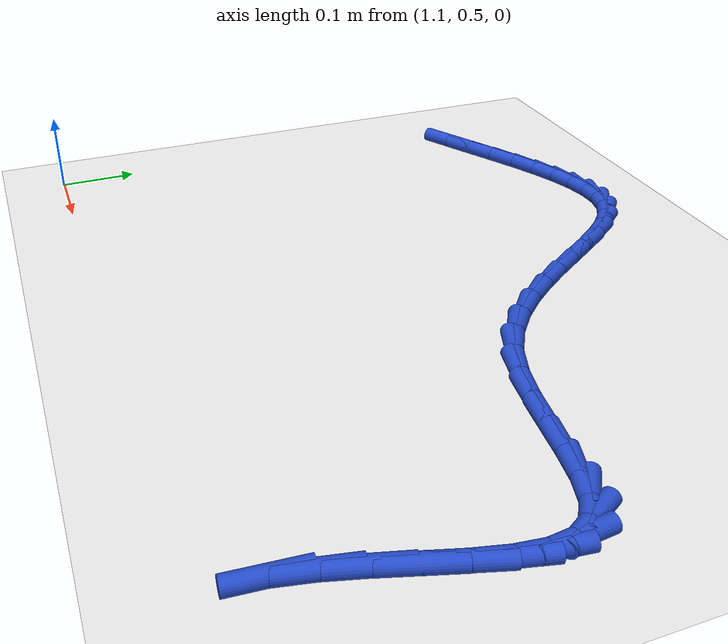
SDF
<sdf version="1.6">
 <world name="default">
  <model name="ground_plane">
   <static>1</static>
   <link name="link">
    <collision name="collision">
     <geometry><plane><normal>0 0 1</normal><size>100 100</size></plane></geometry>
     <surface><friction><ode><mu>100</mu><mu2>50</mu2></ode></friction></surface>
    </collision>
    <visual name="visual">
     <cast_shadows>0</cast_shadows>
     <geometry><plane><normal>0 0 1</normal><size>100 100</size></plane></geometry>
     <material>
      <script><uri>file://media/materials/scripts/gazebo.material</uri><name>Gazebo/WhiteGlow</name></script>
     </material>
    </visual>
   </link>
  </model>
  <model name="line">
   <link name="link_51">
    <pose>1.1722780685737235 1.085295206847069 0.01 0 1.57 0.5056104026165193</pose>
    <collision name="collision">
     <geometry><cylinder><radius>0.01</radius><length>0.08</length></cylinder></geometry>
    </collision>
    <visual name="visual">
     <material>
      <script><name>Gazebo/Blue</name><uri>file://media/materials/scripts/gazebo.material</uri></script>
     </material>
     <geometry><cylinder><radius>0.01</radius><length>0.08</length></cylinder></geometry>
    </visual>
   </link>
   <link name="link_52">
    <pose>1.2079576424929257 1.1050477675687997 0.01 0 1.57 0.5108276466548389</pose>
    <collision name="collision">
     <geometry><cylinder><radius>0.01</radius><length>0.08</length></cylinder></geometry>
    </collision>
    <visual name="visual">
     <material>
      <script><name>Gazebo/Blue</name><uri>file://media/materials/scripts/gazebo.material</uri></script>
     </material>
     <geometry><cylinder><radius>0.01</radius><length>0.08</length></cylinder></geometry>
    </visual>
   </link>
   <link name="link_53">
    <pose>1.2428964680187569 1.124629086350168 0.01 0 1.57 0.4988321112099095</pose>
    <collision name="collision">
     <geometry><cylinder><radius>0.01</radius><length>0.08</length></cylinder></geometry>
    </collision>
    <visual name="visual">
     <material>
      <script><name>Gazebo/Blue</name><uri>file://media/materials/scripts/gazebo.material</uri></script>
     </material>
     <geometry><cylinder><radius>0.01</radius><length>0.08</length></cylinder></geometry>
    </visual>
   </link>
   <link name="link_54">
    <pose>1.2769213514031528 1.1431654010066314 0.01 0 1.57 0.46725213005288696</pose>
    <collision name="collision">
     <geometry><cylinder><radius>0.01</radius><length>0.08</length></cylinder></geometry>
    </collision>
    <visual name="visual">
     <material>
      <script><name>Gazebo/Blue</name><uri>file://media/materials/scripts/gazebo.material</uri></script>
     </material>
     <geometry><cylinder><radius>0.01</radius><length>0.08</length></cylinder></geometry>
    </visual>
   </link>
   <link name="link_55">
    <pose>1.3098590988980492 1.1597829493536476 0.01 0 1.57 0.4115131672385158</pose>
    <collision name="collision">
     <geometry><cylinder><radius>0.01</radius><length>0.08</length></cylinder></geometry>
    </collision>
    <visual name="visual">
     <material>
      <script><name>Gazebo/Blue</name><uri>file://media/materials/scripts/gazebo.material</uri></script>
     </material>
     <geometry><cylinder><radius>0.01</radius><length>0.08</length></cylinder></geometry>
    </visual>
   </link>
   <link name="link_56">
    <pose>1.3415365167553832 1.1736079692066748 0.01 0 1.57 0.32405297972470215</pose>
    <collision name="collision">
     <geometry><cylinder><radius>0.01</radius><length>0.08</length></cylinder></geometry>
    </collision>
    <visual name="visual">
     <material>
      <script><name>Gazebo/Blue</name><uri>file://media/materials/scripts/gazebo.material</uri></script>
     </material>
     <geometry><cylinder><radius>0.01</radius><length>0.08</length></cylinder></geometry>
    </visual>
   </link>
   <link name="link_57">
    <pose>1.3717804112270906 1.1837666983811703 0.01 0 1.57 0.19374114664384048</pose>
    <collision name="collision">
     <geometry><cylinder><radius>0.01</radius><length>0.08</length></cylinder></geometry>
    </collision>
    <visual name="visual">
     <material>
      <script><name>Gazebo/Blue</name><uri>file://media/materials/scripts/gazebo.material</uri></script>
     </material>
     <geometry><cylinder><radius>0.01</radius><length>0.08</length></cylinder></geometry>
    </visual>
   </link>
   <link name="link_58">
    <pose>1.400417588565107 1.1893853746925929 0.01 0 1.57 0.007627629979824843</pose>
    <collision name="collision">
     <geometry><cylinder><radius>0.01</radius><length>0.08</length></cylinder></geometry>
    </collision>
    <visual name="visual">
     <material>
      <script><name>Gazebo/Blue</name><uri>file://media/materials/scripts/gazebo.material</uri></script>
     </material>
     <geometry><cylinder><radius>0.01</radius><length>0.08</length></cylinder></geometry>
    </visual>
   </link>
   <link name="link_59">
    <pose>1.4272748550213692 1.1895902359563995 0.01 0 1.57 -0.2395548619460163</pose>
    <collision name="collision">
     <geometry><cylinder><radius>0.01</radius><length>0.08</length></cylinder></geometry>
    </collision>
    <visual name="visual">
     <material>
      <script><name>Gazebo/Blue</name><uri>file://media/materials/scripts/gazebo.material</uri></script>
     </material>
     <geometry><cylinder><radius>0.01</radius><length>0.08</length></cylinder></geometry>
    </visual>
   </link>
   <link name="link_60">
    <pose>1.452179016847813 1.1835075199880483 0.01 0 1.57 -0.518976915849766</pose>
    <collision name="collision">
     <geometry><cylinder><radius>0.01</radius><length>0.08</length></cylinder></geometry>
    </collision>
    <visual name="visual">
     <material>
      <script><name>Gazebo/Blue</name><uri>file://media/materials/scripts/gazebo.material</uri></script>
     </material>
     <geometry><cylinder><radius>0.01</radius><length>0.08</length></cylinder></geometry>
    </visual>
   </link>
   <link name="link_61">
    <pose>1.4750266304171653 1.1704568683848118 0.01 0 1.57 -0.7403744451909341</pose>
    <collision name="collision">
     <geometry><cylinder><radius>0.01</radius><length>0.08</length></cylinder></geometry>
    </collision>
    <visual name="visual">
     <material>
      <script><name>Gazebo/Blue</name><uri>file://media/materials/scripts/gazebo.material</uri></script>
     </material>
     <geometry><cylinder><radius>0.01</radius><length>0.08</length></cylinder></geometry>
    </visual>
   </link>
   <link name="link_62">
    <pose>1.496201175592273 1.1511080687132784 0.01 0 1.57 -0.8819455033402076</pose>
    <collision name="collision">
     <geometry><cylinder><radius>0.01</radius><length>0.08</length></cylinder></geometry>
    </collision>
    <visual name="visual">
     <material>
      <script><name>Gazebo/Blue</name><uri>file://media/materials/scripts/gazebo.material</uri></script>
     </material>
     <geometry><cylinder><radius>0.01</radius><length>0.08</length></cylinder></geometry>
    </visual>
   </link>
   <link name="link_63">
    <pose>1.5162936726945122 1.1267063786482425 0.01 0 1.57 -0.963475912575983</pose>
    <collision name="collision">
     <geometry><cylinder><radius>0.01</radius><length>0.08</length></cylinder></geometry>
    </collision>
    <visual name="visual">
     <material>
      <script><name>Gazebo/Blue</name><uri>file://media/materials/scripts/gazebo.material</uri></script>
     </material>
     <geometry><cylinder><radius>0.01</radius><length>0.08</length></cylinder></geometry>
    </visual>
   </link>
   <link name="link_64">
    <pose>1.5358959123936033 1.0984991918935445 0.01 0 1.57 -1.0011606618247737</pose>
    <collision name="collision">
     <geometry><cylinder><radius>0.01</radius><length>0.08</length></cylinder></geometry>
    </collision>
    <visual name="visual">
     <material>
      <script><name>Gazebo/Blue</name><uri>file://media/materials/scripts/gazebo.material</uri></script>
     </material>
     <geometry><cylinder><radius>0.01</radius><length>0.08</length></cylinder></geometry>
    </visual>
   </link>
   <link name="link_65">
    <pose>1.5555996853592713 1.0677339021530254 0.01 0 1.57 -1.004397864008617</pose>
    <collision name="collision">
     <geometry><cylinder><radius>0.01</radius><length>0.08</length></cylinder></geometry>
    </collision>
    <visual name="visual">
     <material>
      <script><name>Gazebo/Blue</name><uri>file://media/materials/scripts/gazebo.material</uri></script>
     </material>
     <geometry><cylinder><radius>0.01</radius><length>0.08</length></cylinder></geometry>
    </visual>
   </link>
   <link name="link_66">
    <pose>1.575996782261238 1.0356579031305253 0.01 0 1.57 -0.977299485223496</pose>
    <collision name="collision">
     <geometry><cylinder><radius>0.01</radius><length>0.08</length></cylinder></geometry>
    </collision>
    <visual name="visual">
     <material>
      <script><name>Gazebo/Blue</name><uri>file://media/materials/scripts/gazebo.material</uri></script>
     </material>
     <geometry><cylinder><radius>0.01</radius><length>0.08</length></cylinder></geometry>
    </visual>
   </link>
   <link name="link_67">
    <pose>1.5976789937692264 1.0035185885298847 0.01 0 1.57 -0.9202476754664713</pose>
    <collision name="collision">
     <geometry><cylinder><radius>0.01</radius><length>0.08</length></cylinder></geometry>
    </collision>
    <visual name="visual">
     <material>
      <script><name>Gazebo/Blue</name><uri>file://media/materials/scripts/gazebo.material</uri></script>
     </material>
     <geometry><cylinder><radius>0.01</radius><length>0.08</length></cylinder></geometry>
    </visual>
   </link>
   <link name="link_68">
    <pose>1.62123811055296 0.9725633520549448 0.01 0 1.57 -0.8311202583945347</pose>
    <collision name="collision">
     <geometry><cylinder><radius>0.01</radius><length>0.08</length></cylinder></geometry>
    </collision>
    <visual name="visual">
     <material>
      <script><name>Gazebo/Blue</name><uri>file://media/materials/scripts/gazebo.material</uri></script>
     </material>
     <geometry><cylinder><radius>0.01</radius><length>0.08</length></cylinder></geometry>
    </visual>
   </link>
   <link name="link_69">
    <pose>1.6472659232821616 0.9440395874095459 0.01 0 1.57 -0.7068810963710302</pose>
    <collision name="collision">
     <geometry><cylinder><radius>0.01</radius><length>0.08</length></cylinder></geometry>
    </collision>
    <visual name="visual">
     <material>
      <script><name>Gazebo/Blue</name><uri>file://media/materials/scripts/gazebo.material</uri></script>
     </material>
     <geometry><cylinder><radius>0.01</radius><length>0.08</length></cylinder></geometry>
    </visual>
   </link>
   <link name="link_70">
    <pose>1.6763542226265533 0.9191946882975285 0.01 0 1.57 -0.5465568833097849</pose>
    <collision name="collision">
     <geometry><cylinder><radius>0.01</radius><length>0.08</length></cylinder></geometry>
    </collision>
    <visual name="visual">
     <material>
      <script><name>Gazebo/Blue</name><uri>file://media/materials/scripts/gazebo.material</uri></script>
     </material>
     <geometry><cylinder><radius>0.01</radius><length>0.08</length></cylinder></geometry>
    </visual>
   </link>
   <link name="link_71">
    <pose>1.7090947992558587 0.8992760484227336 0.01 0 1.57 -0.3636566786226002</pose>
    <collision name="collision">
     <geometry><cylinder><radius>0.01</radius><length>0.08</length></cylinder></geometry>
    </collision>
    <visual name="visual">
     <material>
      <script><name>Gazebo/Blue</name><uri>file://media/materials/scripts/gazebo.material</uri></script>
     </material>
     <geometry><cylinder><radius>0.01</radius><length>0.08</length></cylinder></geometry>
    </visual>
   </link>
   <link name="link_72">
    <pose>1.7458678595486083 0.8852808329219387 0.01 0 1.57 -0.22584856695018668</pose>
    <collision name="collision">
     <geometry><cylinder><radius>0.01</radius><length>0.08</length></cylinder></geometry>
    </collision>
    <visual name="visual">
     <material>
      <script><name>Gazebo/Blue</name><uri>file://media/materials/scripts/gazebo.material</uri></script>
     </material>
     <geometry><cylinder><radius>0.01</radius><length>0.08</length></cylinder></geometry>
    </visual>
   </link>
   <link name="link_73">
    <pose>1.7853624841391937 0.8762062098182672 0.01 0 1.57 -0.1513684330890162</pose>
    <collision name="collision">
     <geometry><cylinder><radius>0.01</radius><length>0.08</length></cylinder></geometry>
    </collision>
    <visual name="visual">
     <material>
      <script><name>Gazebo/Blue</name><uri>file://media/materials/scripts/gazebo.material</uri></script>
     </material>
     <geometry><cylinder><radius>0.01</radius><length>0.08</length></cylinder></geometry>
    </visual>
   </link>
   <link name="link_74">
    <pose>1.825456902207941 0.8700903997748676 0.01 0 1.57 -0.1321057434021316</pose>
    <collision name="collision">
     <geometry><cylinder><radius>0.01</radius><length>0.08</length></cylinder></geometry>
    </collision>
    <visual name="visual">
     <material>
      <script><name>Gazebo/Blue</name><uri>file://media/materials/scripts/gazebo.material</uri></script>
     </material>
     <geometry><cylinder><radius>0.01</radius><length>0.08</length></cylinder></geometry>
    </visual>
   </link>
   <link name="link_75">
    <pose>1.8640242377694036 0.8649655858690671 0.01 0 1.57 -0.17301759444755868</pose>
    <collision name="collision">
     <geometry><cylinder><radius>0.01</radius><length>0.08</length></cylinder></geometry>
    </collision>
    <visual name="visual">
     <material>
      <script><name>Gazebo/Blue</name><uri>file://media/materials/scripts/gazebo.material</uri></script>
     </material>
     <geometry><cylinder><radius>0.01</radius><length>0.08</length></cylinder></geometry>
    </visual>
   </link>
   <link name="link_76">
    <pose>1.8989376148381352 0.8588639511781939 0.01 0 1.57 -0.3010811138258397</pose>
    <collision name="collision">
     <geometry><cylinder><radius>0.01</radius><length>0.08</length></cylinder></geometry>
    </collision>
    <visual name="visual">
     <material>
      <script><name>Gazebo/Blue</name><uri>file://media/materials/scripts/gazebo.material</uri></script>
     </material>
     <geometry><cylinder><radius>0.01</radius><length>0.08</length></cylinder></geometry>
    </visual>
   </link>
   <link name="link_77">
    <pose>1.928070157428688 0.8498176787795755 0.01 0 1.57 -0.5817414018812123</pose>
    <collision name="collision">
     <geometry><cylinder><radius>0.01</radius><length>0.08</length></cylinder></geometry>
    </collision>
    <visual name="visual">
     <material>
      <script><name>Gazebo/Blue</name><uri>file://media/materials/scripts/gazebo.material</uri></script>
     </material>
     <geometry><cylinder><radius>0.01</radius><length>0.08</length></cylinder></geometry>
    </visual>
   </link>
   <link name="link_78">
    <pose>1.9492949895556162 0.8358589517505405 0.01 0 1.57 -1.0566529986468718</pose>
    <collision name="collision">
     <geometry><cylinder><radius>0.01</radius><length>0.08</length></cylinder></geometry>
    </collision>
    <visual name="visual">
     <material>
      <script><name>Gazebo/Blue</name><uri>file://media/materials/scripts/gazebo.material</uri></script>
     </material>
     <geometry><cylinder><radius>0.01</radius><length>0.08</length></cylinder></geometry>
    </visual>
   </link>
   <link name="link_79">
    <pose>1.960890113860649 0.815329743642024 0.01 0 1.57 -1.4635636551070637</pose>
    <collision name="collision">
     <geometry><cylinder><radius>0.01</radius><length>0.08</length></cylinder></geometry>
    </collision>
    <visual name="visual">
     <material>
      <script><name>Gazebo/Blue</name><uri>file://media/materials/scripts/gazebo.material</uri></script>
     </material>
     <geometry><cylinder><radius>0.01</radius><length>0.08</length></cylinder></geometry>
    </visual>
   </link>
   <link name="link_80">
    <pose>1.9637687103272592 0.7885883182755411 0.01 0 1.57 1.449643267915525</pose>
    <collision name="collision">
     <geometry><cylinder><radius>0.01</radius><length>0.08</length></cylinder></geometry>
    </collision>
    <visual name="visual">
     <material>
      <script><name>Gazebo/Blue</name><uri>file://media/materials/scripts/gazebo.material</uri></script>
     </material>
     <geometry><cylinder><radius>0.01</radius><length>0.08</length></cylinder></geometry>
    </visual>
   </link>
   <link name="link_81">
    <pose>1.9598984796846215 0.7567997997495198 0.01 0 1.57 1.3329156102317417</pose>
    <collision name="collision">
     <geometry><cylinder><radius>0.01</radius><length>0.08</length></cylinder></geometry>
    </collision>
    <visual name="visual">
     <material>
      <script><name>Gazebo/Blue</name><uri>file://media/materials/scripts/gazebo.material</uri></script>
     </material>
     <geometry><cylinder><radius>0.01</radius><length>0.08</length></cylinder></geometry>
    </visual>
   </link>
   <link name="link_82">
    <pose>1.9512499153000173 0.7211314489328288 0.01 0 1.57 1.2807234361782398</pose>
    <collision name="collision">
     <geometry><cylinder><radius>0.01</radius><length>0.08</length></cylinder></geometry>
    </collision>
    <visual name="visual">
     <material>
      <script><name>Gazebo/Blue</name><uri>file://media/materials/scripts/gazebo.material</uri></script>
     </material>
     <geometry><cylinder><radius>0.01</radius><length>0.08</length></cylinder></geometry>
    </visual>
   </link>
   <link name="link_83">
    <pose>1.939793510540733 0.682750526694339 0.01 0 1.57 1.272097045706104</pose>
    <collision name="collision">
     <geometry><cylinder><radius>0.01</radius><length>0.08</length></cylinder></geometry>
    </collision>
    <visual name="visual">
     <material>
      <script><name>Gazebo/Blue</name><uri>file://media/materials/scripts/gazebo.material</uri></script>
     </material>
     <geometry><cylinder><radius>0.01</radius><length>0.08</length></cylinder></geometry>
    </visual>
   </link>
   <link name="link_84">
    <pose>1.9274997587740514 0.64282429390292 0.01 0 1.57 1.300656504446641</pose>
    <collision name="collision">
     <geometry><cylinder><radius>0.01</radius><length>0.08</length></cylinder></geometry>
    </collision>
    <visual name="visual">
     <material>
      <script><name>Gazebo/Blue</name><uri>file://media/materials/scripts/gazebo.material</uri></script>
     </material>
     <geometry><cylinder><radius>0.01</radius><length>0.08</length></cylinder></geometry>
    </visual>
   </link>
   <link name="link_85">
    <pose>1.9163391533672571 0.6025200114274408 0.01 0 1.57 1.36965741811731</pose>
    <collision name="collision">
     <geometry><cylinder><radius>0.01</radius><length>0.08</length></cylinder></geometry>
    </collision>
    <visual name="visual">
     <material>
      <script><name>Gazebo/Blue</name><uri>file://media/materials/scripts/gazebo.material</uri></script>
     </material>
     <geometry><cylinder><radius>0.01</radius><length>0.08</length></cylinder></geometry>
    </visual>
   </link>
   <link name="link_86">
    <pose>1.9082821876876341 0.5630049401367724 0.01 0 1.57 1.4915445674172092</pose>
    <collision name="collision">
     <geometry><cylinder><radius>0.01</radius><length>0.08</length></cylinder></geometry>
    </collision>
    <visual name="visual">
     <material>
      <script><name>Gazebo/Blue</name><uri>file://media/materials/scripts/gazebo.material</uri></script>
     </material>
     <geometry><cylinder><radius>0.01</radius><length>0.08</length></cylinder></geometry>
    </visual>
   </link>
  </model>
 </world>
</sdf>
